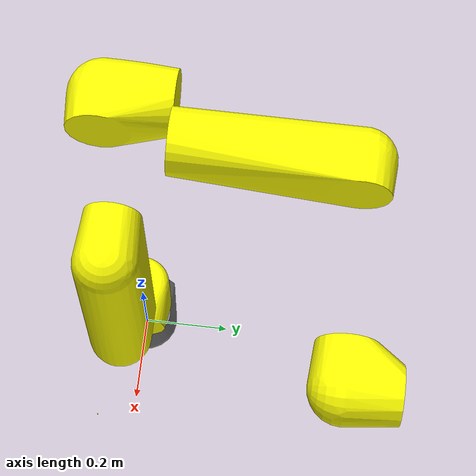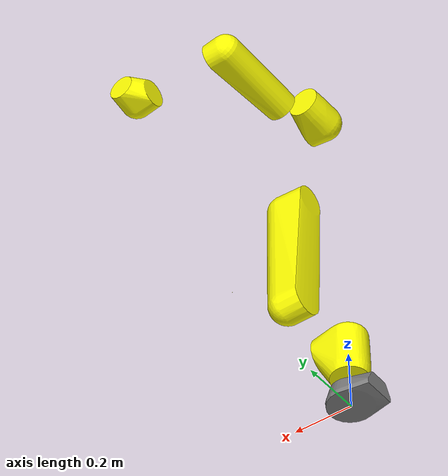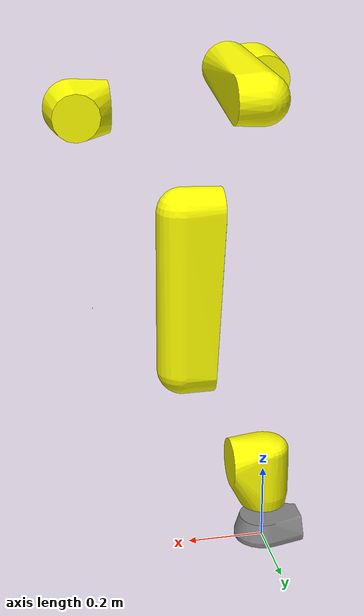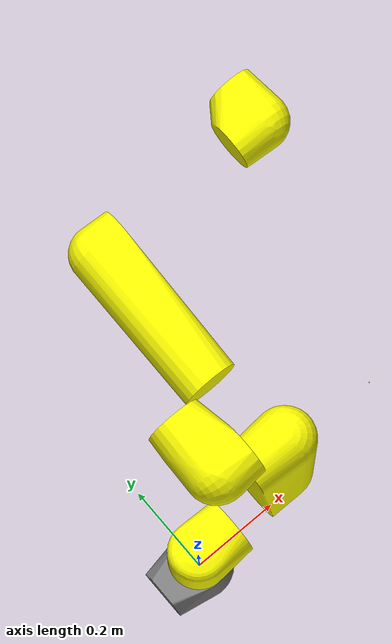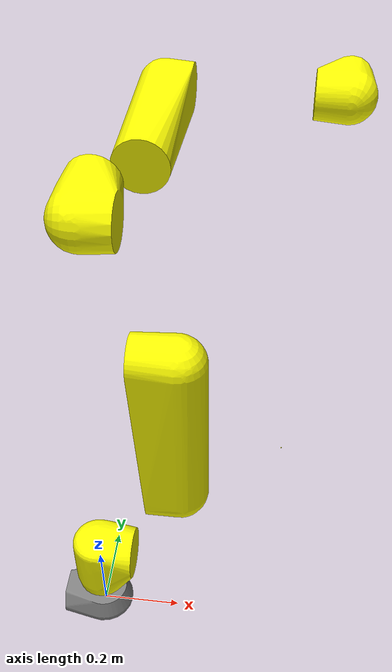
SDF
<?xml version="1.0"?>
<sdf version="1.7">
    <model name='lrmate_200id'>
        <link name='Base'>
            <inertial>
                <pose>-0.006827 0.080423 0.000322 0 -0 0</pose>
                <mass>4.85329</mass>
                <inertia>
                    <ixx>0.0219866</ixx>
                    <ixy>0.000143031</ixy>
                    <ixz>0.000118504</ixz>
                    <iyy>0.0228012</iyy>
                    <iyz>3.06009e-05</iyz>
                    <izz>0.0238292</izz>
                </inertia>
            </inertial>
            <collision name='Base_collision'>
                <pose>0 0 0 0 -0 0</pose>
                <geometry>
                    <mesh>
                        <scale>1 1 1</scale>
                        <uri>model://meshes/base.stl</uri>
                    </mesh>
                </geometry>
            </collision>
            <visual name='Base_visual'>
                <pose>0 0 0 0 -0 0</pose>
                <geometry>
                    <mesh>
                        <scale>1 1 1</scale>
                        <uri>model://meshes/base.stl</uri>
                    </mesh>
                </geometry>
                <material>
                        <ambient>0.5 0.5 0.5 1</ambient>
                        <diffuse>0.5 0.5 0.5 1</diffuse>
                        <specular>0.5 0.5 0.5 1</specular>
                </material>
            </visual>
        </link>
        <joint name='j1' type='revolute'>
            <pose relative_to='Base'>0 0 0.042741 0 -0 0</pose>
            <parent>Base</parent>
            <child>L1</child>
            <axis>
                <xyz>0 0 1</xyz>
                <limit>
                    <lower>-2.9671</lower>
                    <upper>2.9671</upper>
                    <effort>0</effort>
                    <velocity>5.93</velocity>
                </limit>
                <dynamics>
                    <spring_reference>0</spring_reference>
                    <spring_stiffness>0</spring_stiffness>
                </dynamics>
            </axis>
        </joint>
        <link name='L1'>
            <pose relative_to='j1'>0 0 0 0 -0 0</pose>
            <inertial>
                <pose>0.039191 -0.000668 0.318431 0 -0 0</pose>
                <mass>14.3549</mass>
                <inertia>
                    <ixx>0.905962</ixx>
                    <ixy>-0.000630586</ixy>
                    <ixz>-0.13243</ixz>
                    <iyy>0.959094</iyy>
                    <iyz>-0.000831587</iyz>
                    <izz>0.132639</izz>
                </inertia>
            </inertial>
            <collision name='L1_collision'>
                <pose>0 0 0 0 -0 0</pose>
                <geometry>
                    <mesh>
                        <scale>1 1 1</scale>
                        <uri>model://meshes/j1.stl</uri>
                    </mesh>
                </geometry>
            </collision>
            <visual name='L1_visual'>
                <pose>0 0 0 0 -0 0</pose>
                <geometry>
                    <mesh>
                        <scale>1 1 1</scale>
                        <uri>model://meshes/j1.stl</uri>
                    </mesh>
                </geometry>
                <material>
                        <ambient>1.0 1.0 0.0 1</ambient>
                        <diffuse>1.0 1.0 0.0 1</diffuse>
                        <specular>0.8 0.8 0.3 1</specular>
                </material>
            </visual>
        </link>
        <joint name='j2' type='revolute'>
            <pose relative_to='L1'>0.05 0 0.28726 0 -0 0</pose>
            <parent>L1</parent>
            <child>L2</child>
            <axis>
                <xyz>0 -1 0</xyz>
                <limit>
                    <lower>-2.5307</lower>
                    <upper>1.7453</upper>
                    <effort>0</effort>
                    <velocity>4.28</velocity>
                </limit>
                <dynamics>
                    <spring_reference>0</spring_reference>
                    <spring_stiffness>0</spring_stiffness>
                </dynamics>
            </axis>
        </joint>
        <link name='L2'>
            <pose relative_to='j2'>0 0 0 0 -0 0</pose>
            <inertial>
                <pose>-0.007993 -0.001801 0.121256 0 -0 0</pose>
                <mass>6.36136</mass>
                <inertia>
                    <ixx>0.106651</ixx>
                    <ixy>8.06822e-05</ixy>
                    <ixz>0.00145114</ixz>
                    <iyy>0.0870678</iyy>
                    <iyz>-0.000557415</iyz>
                    <izz>0.0317016</izz>
                </inertia>
            </inertial>
            <collision name='L2_collision'>
                <pose>0 0 0 0 -0 0</pose>
                <geometry>
                    <mesh>
                        <scale>1 1 1</scale>
                        <uri>model://meshes/j2.stl</uri>
                    </mesh>
                </geometry>
            </collision>
            <visual name='L2_visual'>
                <pose>0 0 0 0 -0 0</pose>
                <geometry>
                    <mesh>
                        <scale>1 1 1</scale>
                        <uri>model://meshes/j2.stl</uri>
                    </mesh>
                </geometry>
                <material>
                        <ambient>1.0 1.0 0.0 1</ambient>
                        <diffuse>1.0 1.0 0.0 1</diffuse>
                        <specular>0.8 0.8 0.3 1</specular>
                </material>
            </visual>
        </link>
        <joint name='j3' type='revolute'>
            <pose relative_to='L2'>0 0 0.33 0 -0 0</pose>
            <parent>L2</parent>
            <child>L3</child>
            <axis>
                <xyz>0 -1 0</xyz>
                <limit>
                    <lower>-1.2217</lower>
                    <upper>3.5779</upper>
                    <effort>0</effort>
                    <velocity>7.33</velocity>
                </limit>
                <dynamics>
                    <spring_reference>0</spring_reference>
                    <spring_stiffness>0</spring_stiffness>
                </dynamics>
            </axis>
        </joint>
        <link name='L3'>
            <pose relative_to='j3'>0 0 0 0 -0 0</pose>
            <inertial>
                <pose>0.008237 0.00068 0.017646 0 -0 0</pose>
                <mass>2.39426</mass>
                <inertia>
                    <ixx>0.00633473</ixx>
                    <ixy>-4.95045e-05</ixy>
                    <ixz>-0.000761355</ixz>
                    <iyy>0.00732802</iyy>
                    <iyz>-6.64726e-05</iyz>
                    <izz>0.00726043</izz>
                </inertia>
            </inertial>
            <collision name='L3_collision'>
                <pose>0 0 0 0 -0 0</pose>
                <geometry>
                    <mesh>
                        <scale>1 1 1</scale>
                        <uri>model://meshes/j3.stl</uri>
                    </mesh>
                </geometry>
            </collision>
            <visual name='L3_visual'>
                <pose>0 0 0 0 -0 0</pose>
                <geometry>
                    <mesh>
                        <scale>1 1 1</scale>
                        <uri>model://meshes/j3.stl</uri>
                    </mesh>
                </geometry>
                <material>
                        <ambient>1.0 1.0 0.0 1</ambient>
                        <diffuse>1.0 1.0 0.0 1</diffuse>
                        <specular>0.8 0.8 0.3 1</specular>
                </material>
            </visual>
        </link>
        <joint name='j4' type='revolute'>
            <pose relative_to='L3'>0.088001 0 0.035027 0 -0 0</pose>
            <parent>L3</parent>
            <child>L4</child>
            <axis>
                <xyz>-1 0 0</xyz>
                <limit>
                    <lower>-3.3161</lower>
                    <upper>3.3161</upper>
                    <effort>0</effort>
                    <velocity>6.63</velocity>
                </limit>
                <dynamics>
                    <spring_reference>0</spring_reference>
                    <spring_stiffness>0</spring_stiffness>
                </dynamics>
            </axis>
        </joint>
        <link name='L4'>
            <pose relative_to='j4'>0 0 0 0 -0 0</pose>
            <inertial>
                <pose>0.108899 0.008914 0.05615 0 -0 0</pose>
                <mass>0.000826213</mass>
                <inertia>
                    <ixx>2.65673e-08</ixx>
                    <ixy>-1.06533e-19</ixy>
                    <ixz>2.78672e-24</ixz>
                    <iyy>2.71046e-08</iyy>
                    <iyz>2.3309e-24</iyz>
                    <izz>4.12443e-08</izz>
                </inertia>
            </inertial>
            <collision name='L4_collision'>
                <pose>0 0 0 0 -0 0</pose>
                <geometry>
                    <mesh>
                        <scale>1 1 1</scale>
                        <uri>model://meshes/j4.stl</uri>
                    </mesh>
                </geometry>
            </collision>
            <visual name='L4_visual'>
                <pose>0 0 0 0 -0 0</pose>
                <geometry>
                    <mesh>
                        <scale>1 1 1</scale>
                        <uri>model://meshes/j4.stl</uri>
                    </mesh>
                </geometry>
                <material>
                        <ambient>1.0 1.0 0.0 1</ambient>
                        <diffuse>1.0 1.0 0.0 1</diffuse>
                        <specular>0.8 0.8 0.3 1</specular>
                </material>
            </visual>
        </link>
        <joint name='j5' type='revolute'>
            <pose relative_to='L4'>0.2454 0 0 0 -0 0</pose>
            <parent>L4</parent>
            <child>L5</child>
            <axis>
                <xyz>0 -1 0</xyz>
                <limit>
                    <lower>-2.1817</lower>
                    <upper>2.1817</upper>
                    <effort>0</effort>
                    <velocity>4.36</velocity>
                </limit>
                <dynamics>
                    <spring_reference>0</spring_reference>
                    <spring_stiffness>0</spring_stiffness>
                </dynamics>
            </axis>
        </joint>
        <link name='L5'>
            <pose relative_to='j5'>0 0 0 0 -0 0</pose>
            <inertial>
                <pose>0.00558 0.003772 -7.4e-05 0 -0 0</pose>
                <mass>0.353026</mass>
                <inertia>
                    <ixx>0.000244952</ixx>
                    <ixy>1.18236e-05</ixy>
                    <ixz>2.00258e-07</ixz>
                    <iyy>0.000329224</iyy>
                    <iyz>-1.14349e-08</iyz>
                    <izz>0.000304635</izz>
                </inertia>
            </inertial>
            <collision name='L5_collision'>
                <pose>0 0 0 0 -0 0</pose>
                <geometry>
                    <mesh>
                        <scale>1 1 1</scale>
                        <uri>model://meshes/j5.stl</uri>
                    </mesh>
                </geometry>
            </collision>
            <visual name='L5_visual'>
                <pose>0 0 0 0 -0 0</pose>
                <geometry>
                    <mesh>
                        <scale>1 1 1</scale>
                        <uri>model://meshes/j5.stl</uri>
                    </mesh>
                </geometry>
                <material>
                        <ambient>1.0 1.0 0.0 1</ambient>
                        <diffuse>1.0 1.0 0.0 1</diffuse>
                        <specular>0.8 0.8 0.3 1</specular>
                </material>
            </visual>
        </link>
        <joint name='j6' type='revolute'>
            <pose relative_to='L5'>0.05 0 0 1.5708 -0 0</pose>
            <parent>L5</parent>
            <child>L6</child>
            <axis>
                <xyz>-1 0 0</xyz>
                <limit>
                    <lower>-6.2832</lower>
                    <upper>6.2832</upper>
                    <effort>0</effort>
                    <velocity>12.57</velocity>
                </limit>
                <dynamics>
                    <spring_reference>0</spring_reference>
                    <spring_stiffness>0</spring_stiffness>
                </dynamics>
            </axis>
        </joint>
        <link name='L6'>
            <pose relative_to='j6'>0 0 0 0 -0 0</pose>
            <inertial>
                <pose>0.012509 -0 -2.8e-05 0 -0 0</pose>
                <mass>0.0932132</mass>
                <inertia>
                    <ixx>5.26544e-05</ixx>
                    <ixy>3.91456e-14</ixy>
                    <ixz>3.43661e-08</ixz>
                    <iyy>3.1587e-05</iyy>
                    <iyz>2.7569e-11</iyz>
                    <izz>3.16281e-05</izz>
                </inertia>
            </inertial>
            <collision name='L6_collision'>
                <pose>0 0 0 0 -0 0</pose>
                <geometry>
                    <mesh>
                        <scale>0.025 0.025 0.025</scale>
                        <uri>model://meshes/j6.stl</uri>
                    </mesh>
                </geometry>
            </collision>
            <visual name='L6_visual'>
                <pose>0 0 0 0 -0 0</pose>
                <geometry>
                    <mesh>
                        <scale>0.025 0.025 0.025</scale>
                        <uri>model://meshes/j6.stl</uri>
                    </mesh>
                </geometry>
                <material>
                        <ambient>1.0 1.0 0.0 1</ambient>
                        <diffuse>1.0 1.0 0.0 1</diffuse>
                        <specular>0.8 0.8 0.3 1</specular>
                </material>
            </visual>
        </link>
    </model>
</sdf>
